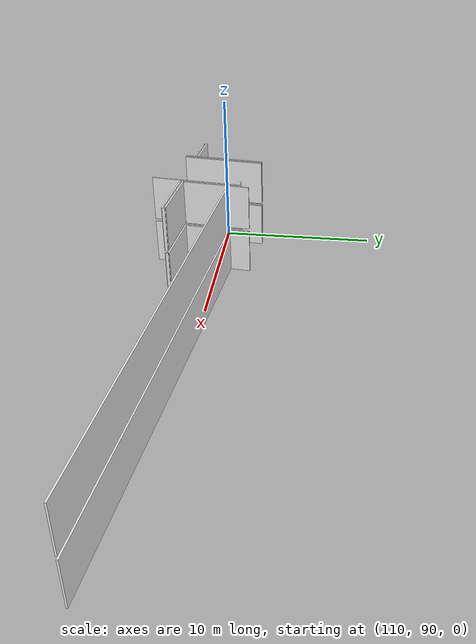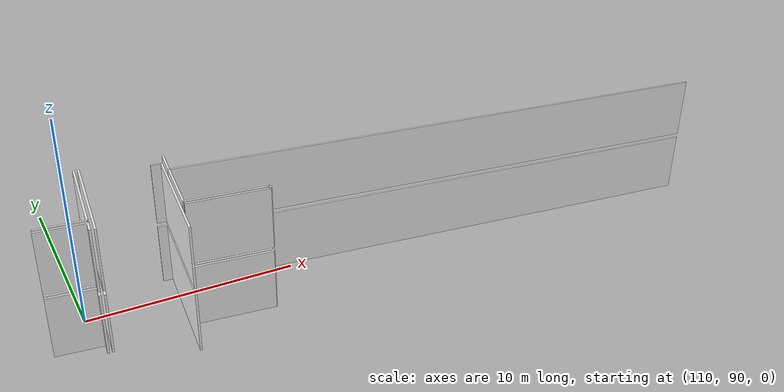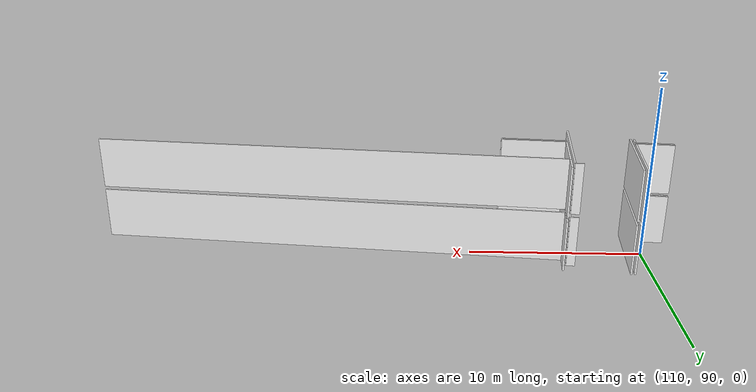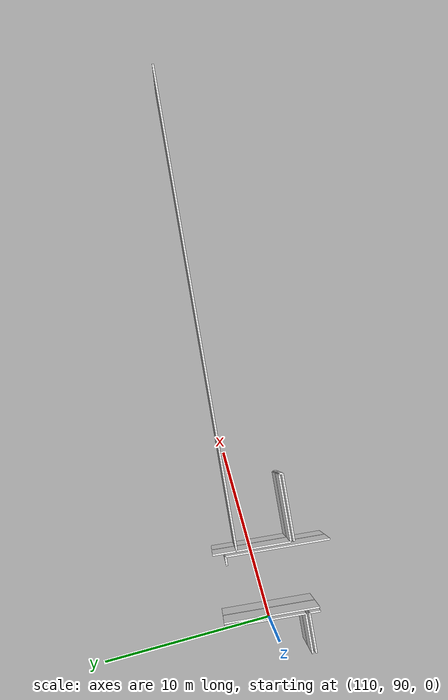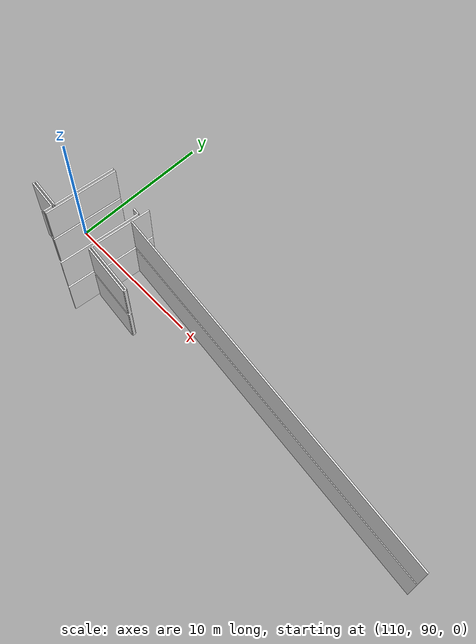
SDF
<sdf version="1.6">
 <world name="default">
  <model name="wall_110.9_89.9_0.0_link">
   <static>true</static>
   <pose>110.875 89.93999999994412 1.5 0 0 1.4703748041183955</pose>
   <link name="link">
    <visual name="visual">
     <geometry><box><size>5.286634089633801 0.1 3</size></box></geometry>
     <material>
      <script><uri>file://media/materials/scripts/gazebo.material</uri><name>Gazebo/White</name></script>
     </material>
    </visual>
   </link>
  </model>
  <model name="wall_114.4_91.5_0.0_link">
   <static>true</static>
   <pose>114.35499999998137 91.5449999999255 1.5 0 0 -0.1016888513887821</pose>
   <link name="link">
    <visual name="visual">
     <geometry><box><size>0.49254441421281653 0.1 3</size></box></geometry>
     <material>
      <script><uri>file://media/materials/scripts/gazebo.material</uri><name>Gazebo/White</name></script>
     </material>
    </visual>
   </link>
  </model>
  <model name="wall_114.3_88.6_0.0_link">
   <static>true</static>
   <pose>114.30999999999767 88.64500000001863 1.5 0 0 -1.671325860608872</pose>
   <link name="link">
    <visual name="visual">
     <geometry><box><size>5.7791781422578925 0.1 3</size></box></geometry>
     <material>
      <script><uri>file://media/materials/scripts/gazebo.material</uri><name>Gazebo/White</name></script>
     </material>
    </visual>
   </link>
  </model>
  <model name="wall_109.4_88.2_0.0_link">
   <static>true</static>
   <pose>109.38499999998021 88.23999999999069 1.5 0 0 -0.10012073211888467</pose>
   <link name="link">
    <visual name="visual">
     <geometry><box><size>2.201022489685271 0.1 3</size></box></geometry>
     <material>
      <script><uri>file://media/materials/scripts/gazebo.material</uri><name>Gazebo/White</name></script>
     </material>
    </visual>
   </link>
  </model>
  <model name="wall_110.7_90.4_0.0_link">
   <static>true</static>
   <pose>110.7049999999872 90.35999999986961 1.5 0 0 1.4702397722029048</pose>
   <link name="link">
    <visual name="visual">
     <geometry><box><size>4.482644308851437 0.1 3</size></box></geometry>
     <material>
      <script><uri>file://media/materials/scripts/gazebo.material</uri><name>Gazebo/White</name></script>
     </material>
    </visual>
   </link>
  </model>
  <model name="wall_109.4_88.0_0.0_link">
   <static>true</static>
   <pose>109.36500000001979 88.04000000003725 1.5 0 0 -0.10012073190837828</pose>
   <link name="link">
    <visual name="visual">
     <geometry><box><size>2.2010224896387265 0.1 3</size></box></geometry>
     <material>
      <script><uri>file://media/materials/scripts/gazebo.material</uri><name>Gazebo/White</name></script>
     </material>
    </visual>
   </link>
  </model>
  <model name="wall_110.4_87.6_0.0_link">
   <static>true</static>
   <pose>110.43000000002212 87.63000000012107 1.5 0 0 -1.6704649792668482</pose>
   <link name="link">
    <visual name="visual">
     <geometry><box><size>0.6029925373596918 0.1 3</size></box></geometry>
     <material>
      <script><uri>file://media/materials/scripts/gazebo.material</uri><name>Gazebo/White</name></script>
     </material>
    </visual>
   </link>
  </model>
  <model name="wall_116.3_87.5_0.0_link">
   <static>true</static>
   <pose>116.27499999999418 87.48999999999069 1.5 0 0 3.040066253673752</pose>
   <link name="link">
    <visual name="visual">
     <geometry><box><size>3.7493066026352446 0.1 3</size></box></geometry>
     <material>
      <script><uri>file://media/materials/scripts/gazebo.material</uri><name>Gazebo/White</name></script>
     </material>
    </visual>
   </link>
  </model>
  <model name="wall_128.3_89.5_0.0_link">
   <static>true</static>
   <pose>128.32499999998254 89.47999999998137 1.5 0 0 3.0411593638960905</pose>
   <link name="link">
    <visual name="visual">
     <geometry><box><size>27.327709380797934 0.1 3</size></box></geometry>
     <material>
      <script><uri>file://media/materials/scripts/gazebo.material</uri><name>Gazebo/White</name></script>
     </material>
    </visual>
   </link>
  </model>
  <model name="wall_114.6_89.4_0.0_link">
   <static>true</static>
   <pose>114.5799999999872 89.35499999998137 1.5 0 0 -1.6707961050904907</pose>
   <link name="link">
    <visual name="visual">
     <geometry><box><size>3.005012479396658 0.1 3</size></box></geometry>
     <material>
      <script><uri>file://media/materials/scripts/gazebo.material</uri><name>Gazebo/White</name></script>
     </material>
    </visual>
   </link>
  </model>
  <model name="wall_116.3_87.7_0.0_link">
   <static>true</static>
   <pose>116.2949999999837 87.67500000004657 1.5 0 0 -0.09887226286603688</pose>
   <link name="link">
    <visual name="visual">
     <geometry><box><size>3.748306284123425 0.1 3</size></box></geometry>
     <material>
      <script><uri>file://media/materials/scripts/gazebo.material</uri><name>Gazebo/White</name></script>
     </material>
    </visual>
   </link>
  </model>
  <model name="wall_118.1_87.4_0.0_link">
   <static>true</static>
   <pose>118.14999999999418 87.39500000001863 1.5 0 0 -1.6756732650945534</pose>
   <link name="link">
    <visual name="visual">
     <geometry><box><size>0.19104973214881482 0.1 3</size></box></geometry>
     <material>
      <script><uri>file://media/materials/scripts/gazebo.material</uri><name>Gazebo/White</name></script>
     </material>
    </visual>
   </link>
  </model>
  <model name="wall_114.8_91.5_0.0_link">
   <static>true</static>
   <pose>114.79999999998836 91.52000000001863 1.5 0 0 1.4666963886634918</pose>
   <link name="link">
    <visual name="visual">
     <geometry><box><size>1.3472935833011899 0.1 3</size></box></geometry>
     <material>
      <script><uri>file://media/materials/scripts/gazebo.material</uri><name>Gazebo/White</name></script>
     </material>
    </visual>
   </link>
  </model>
  <model name="wall_110.9_89.9_3.2_link">
   <static>true</static>
   <pose>110.875 89.93999999994412 4.7 0 0 1.4703748041183955</pose>
   <link name="link">
    <visual name="visual">
     <geometry><box><size>5.286634089633801 0.1 3</size></box></geometry>
     <material>
      <script><uri>file://media/materials/scripts/gazebo.material</uri><name>Gazebo/White</name></script>
     </material>
    </visual>
   </link>
  </model>
  <model name="wall_114.4_91.5_3.2_link">
   <static>true</static>
   <pose>114.35499999998137 91.5449999999255 4.7 0 0 -0.1016888513887821</pose>
   <link name="link">
    <visual name="visual">
     <geometry><box><size>0.49254441421281653 0.1 3</size></box></geometry>
     <material>
      <script><uri>file://media/materials/scripts/gazebo.material</uri><name>Gazebo/White</name></script>
     </material>
    </visual>
   </link>
  </model>
  <model name="wall_114.3_88.6_3.2_link">
   <static>true</static>
   <pose>114.30999999999767 88.64500000001863 4.7 0 0 -1.671325860608872</pose>
   <link name="link">
    <visual name="visual">
     <geometry><box><size>5.7791781422578925 0.1 3</size></box></geometry>
     <material>
      <script><uri>file://media/materials/scripts/gazebo.material</uri><name>Gazebo/White</name></script>
     </material>
    </visual>
   </link>
  </model>
  <model name="wall_109.4_88.2_3.2_link">
   <static>true</static>
   <pose>109.38499999998021 88.23999999999069 4.7 0 0 -0.10012073211888467</pose>
   <link name="link">
    <visual name="visual">
     <geometry><box><size>2.201022489685271 0.1 3</size></box></geometry>
     <material>
      <script><uri>file://media/materials/scripts/gazebo.material</uri><name>Gazebo/White</name></script>
     </material>
    </visual>
   </link>
  </model>
  <model name="wall_110.7_90.4_3.2_link">
   <static>true</static>
   <pose>110.7049999999872 90.35999999986961 4.7 0 0 1.4702397722029048</pose>
   <link name="link">
    <visual name="visual">
     <geometry><box><size>4.482644308851437 0.1 3</size></box></geometry>
     <material>
      <script><uri>file://media/materials/scripts/gazebo.material</uri><name>Gazebo/White</name></script>
     </material>
    </visual>
   </link>
  </model>
  <model name="wall_109.4_88.0_3.2_link">
   <static>true</static>
   <pose>109.36500000001979 88.04000000003725 4.7 0 0 -0.10012073190837828</pose>
   <link name="link">
    <visual name="visual">
     <geometry><box><size>2.2010224896387265 0.1 3</size></box></geometry>
     <material>
      <script><uri>file://media/materials/scripts/gazebo.material</uri><name>Gazebo/White</name></script>
     </material>
    </visual>
   </link>
  </model>
  <model name="wall_110.4_87.6_3.2_link">
   <static>true</static>
   <pose>110.43000000002212 87.63000000012107 4.7 0 0 -1.6704649792668482</pose>
   <link name="link">
    <visual name="visual">
     <geometry><box><size>0.6029925373596918 0.1 3</size></box></geometry>
     <material>
      <script><uri>file://media/materials/scripts/gazebo.material</uri><name>Gazebo/White</name></script>
     </material>
    </visual>
   </link>
  </model>
  <model name="wall_116.3_87.5_3.2_link">
   <static>true</static>
   <pose>116.27499999999418 87.48999999999069 4.7 0 0 3.040066253673752</pose>
   <link name="link">
    <visual name="visual">
     <geometry><box><size>3.7493066026352446 0.1 3</size></box></geometry>
     <material>
      <script><uri>file://media/materials/scripts/gazebo.material</uri><name>Gazebo/White</name></script>
     </material>
    </visual>
   </link>
  </model>
  <model name="wall_128.3_89.5_3.2_link">
   <static>true</static>
   <pose>128.32499999998254 89.47999999998137 4.7 0 0 3.0411593638960905</pose>
   <link name="link">
    <visual name="visual">
     <geometry><box><size>27.327709380797934 0.1 3</size></box></geometry>
     <material>
      <script><uri>file://media/materials/scripts/gazebo.material</uri><name>Gazebo/White</name></script>
     </material>
    </visual>
   </link>
  </model>
  <model name="wall_114.6_89.4_3.2_link">
   <static>true</static>
   <pose>114.5799999999872 89.35499999998137 4.7 0 0 -1.6707961050904907</pose>
   <link name="link">
    <visual name="visual">
     <geometry><box><size>3.005012479396658 0.1 3</size></box></geometry>
     <material>
      <script><uri>file://media/materials/scripts/gazebo.material</uri><name>Gazebo/White</name></script>
     </material>
    </visual>
   </link>
  </model>
  <model name="wall_116.3_87.7_3.2_link">
   <static>true</static>
   <pose>116.2949999999837 87.67500000004657 4.7 0 0 -0.09887226286603688</pose>
   <link name="link">
    <visual name="visual">
     <geometry><box><size>3.748306284123425 0.1 3</size></box></geometry>
     <material>
      <script><uri>file://media/materials/scripts/gazebo.material</uri><name>Gazebo/White</name></script>
     </material>
    </visual>
   </link>
  </model>
  <model name="wall_118.1_87.4_3.2_link">
   <static>true</static>
   <pose>118.14999999999418 87.39500000001863 4.7 0 0 -1.6756732650945534</pose>
   <link name="link">
    <visual name="visual">
     <geometry><box><size>0.19104973214881482 0.1 3</size></box></geometry>
     <material>
      <script><uri>file://media/materials/scripts/gazebo.material</uri><name>Gazebo/White</name></script>
     </material>
    </visual>
   </link>
  </model>
  <model name="wall_114.8_91.5_3.2_link">
   <static>true</static>
   <pose>114.79999999998836 91.52000000001863 4.7 0 0 1.4666963886634918</pose>
   <link name="link">
    <visual name="visual">
     <geometry><box><size>1.3472935833011899 0.1 3</size></box></geometry>
     <material>
      <script><uri>file://media/materials/scripts/gazebo.material</uri><name>Gazebo/White</name></script>
     </material>
    </visual>
   </link>
  </model>
 </world>
</sdf>
